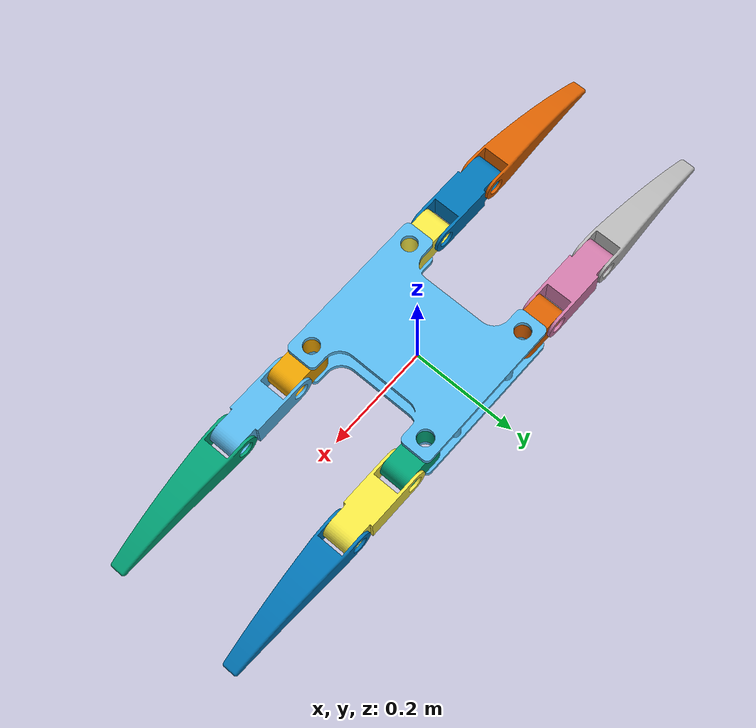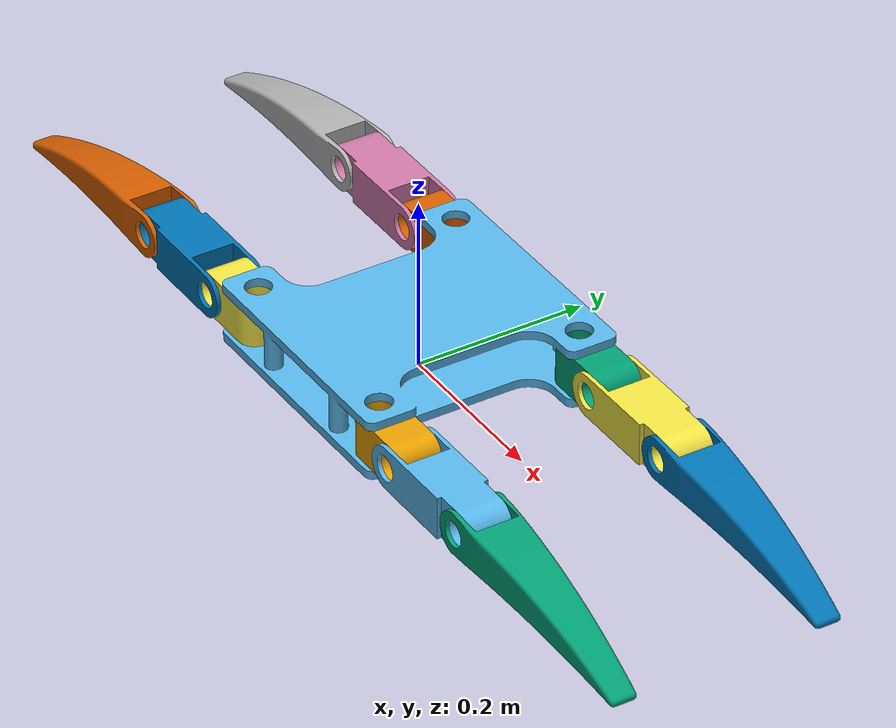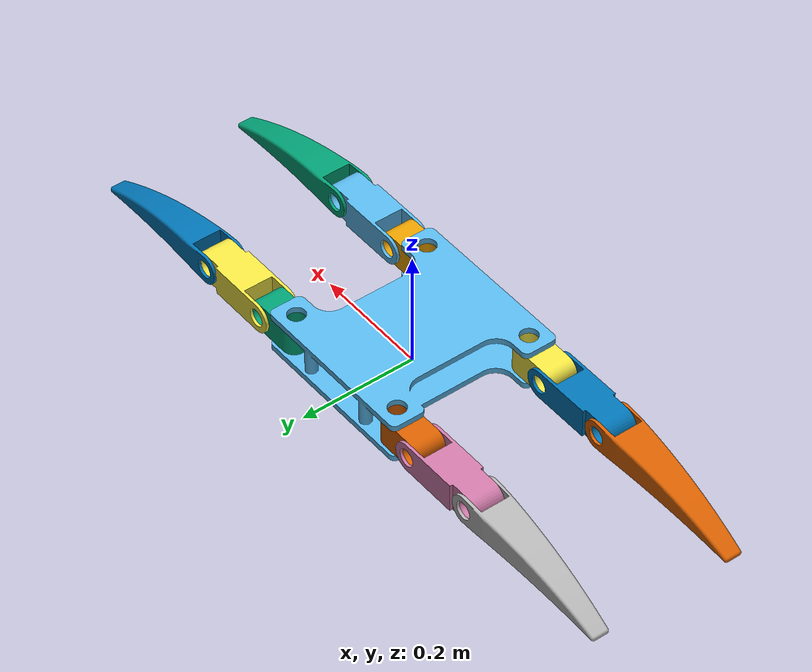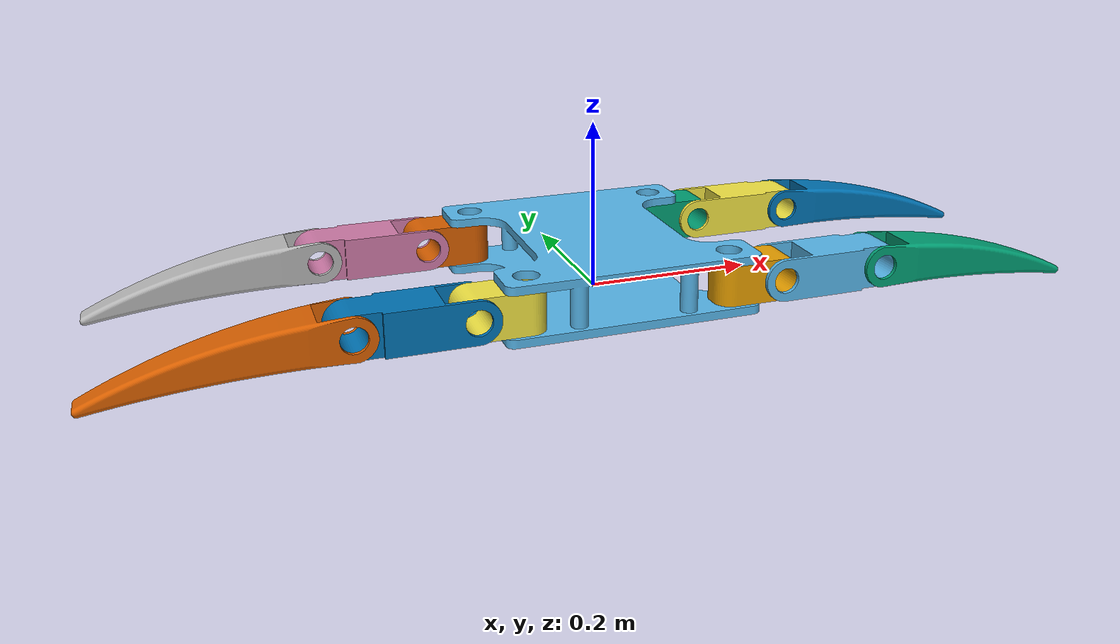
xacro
<?xml version="1.0"?>
<robot name="spider" xmlns:xacro="http://www.ros.org/wiki/xacro">

  <xacro:include filename="$(find quadruped_robots_description)/urdf/spider/base/base.urdf.xacro"/>
  <xacro:include filename="$(find quadruped_robots_description)/urdf/spider/legs/leg.urdf.xacro"/>

  <!-- =============== Links & Joints =============== -->

  <!-- Base -->
  <link name="base_footprint"/>
  <xacro:base parent="base_footprint">
    <origin xyz="0 0 0"/>
  </xacro:base>

  <!-- Legs -->
  <!-- Front right leg -->
  <xacro:leg prefix="fr" parent="base_link">
    <origin rpy="0 0 0" xyz="0.12 0.12 0.01"/>
  </xacro:leg>
  <!-- Front left leg -->
  <xacro:leg prefix="fl" parent="base_link">
    <origin rpy="0 0 ${M_PI}" xyz="-0.12 0.12 0.01"/>
  </xacro:leg>
  <!-- Rear right leg -->
  <xacro:leg prefix="rr" parent="base_link">
    <origin rpy="0 0 0" xyz="0.12 -0.12 0.01"/>
  </xacro:leg>
  <!-- Rear left leg -->
  <xacro:leg prefix="rl" parent="base_link">
    <origin rpy="0 0 ${M_PI}" xyz="-0.12 -0.12 0.01"/>
  </xacro:leg>
</robot>

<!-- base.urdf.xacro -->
<robot xmlns:xacro="http://www.ros.org/wiki/xacro">

  <xacro:include filename="$(find quadruped_robots_description)/urdf/spider/base/base.gazebo.xacro"/>

  <xacro:macro name="base" params="parent *joint_origin">
    <joint name="base_link_joint" type="fixed">>
      <insert_block name="joint_origin"/>
      <parent link="${parent}"/>
      <child link="base_link"/>
    </joint>

    <link name="base_link">
      <visual>
        <geometry>
          <mesh filename="package://quadruped_robots_description/meshes/spider/base.STL"/>
        </geometry>
      </visual>
      <collision>
        <geometry>
          <mesh filename="package://quadruped_robots_description/meshes/spider/base.STL"/>
        </geometry>
      </collision>
      <inertial>
        <mass value="1.38630"/>
        <inertia ixx="0.01563185703" ixy="0" ixz="0" iyy="0.00958260405" iyz="0" izz="0.01938754188"/>
      </inertial>
    </link>
  </xacro:macro>

</robot>

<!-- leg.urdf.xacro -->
<robot xmlns:xacro="http://www.ros.org/wiki/xacro">

  <xacro:include filename="$(find quadruped_robots_description)/urdf/spider/legs/leg1.urdf.xacro"/>
  <xacro:include filename="$(find quadruped_robots_description)/urdf/spider/legs/leg2.urdf.xacro"/>
  <xacro:include filename="$(find quadruped_robots_description)/urdf/spider/legs/leg3.urdf.xacro"/>

  <xacro:macro name="leg" params="prefix parent *joint_origin">
    <xacro:leg1 prefix="${prefix}" parent="${parent}">
      <insert_block name="joint_origin"/>
    </xacro:leg1>
    <xacro:leg2 prefix="${prefix}" parent="${prefix}_leg1_link">
      <origin rpy="0 0 0" xyz="0.06 -0.03 0.025"/>
    </xacro:leg2>
    <xacro:leg3 prefix="${prefix}" parent="${prefix}_leg2_link">
      <origin rpy="0 0 0" xyz="0.13 0 0"/>
    </xacro:leg3>
  </xacro:macro>

</robot>

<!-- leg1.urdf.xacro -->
<robot xmlns:xacro="http://www.ros.org/wiki/xacro">

  <xacro:include filename="$(find quadruped_robots_description)/urdf/servo_motors/servo_motors.xacro"/>

  <xacro:macro name="leg1" params="prefix parent *joint_origin">
    <joint name="${prefix}_leg1_joint" type="revolute">
      <insert_block name="joint_origin"/>
      <axis xyz="0 0 1"/>
      <KRS3302ICS_limit/>
      <parent link="${parent}"/>
      <child link="${prefix}_leg1_link"/>
    </joint>

    <link name="${prefix}_leg1_link">
      <visual>
        <geometry>
          <mesh filename="package://quadruped_robots_description/meshes/spider/leg1.STL"/>
        </geometry>
      </visual>
      <collision>
        <geometry>
          <mesh filename="package://quadruped_robots_description/meshes/spider/leg1.STL"/>
        </geometry>
      </collision>
      <inertial>
        <mass value="0.16215"/>
        <inertia ixx="0.00017574959" ixy="0" ixz="0.00012160951" iyy="0.00038938203" iyz="0" izz="0.00028804077"/>
      </inertial>
    </link>
  </xacro:macro>

</robot>

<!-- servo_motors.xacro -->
<robot xmlns:xacro="http://www.ros.org/wiki/xacro">

  <xacro:include filename="$(find quadruped_robots_description)/urdf/common.xacro"/>

  <xacro:macro name="KRS3302ICS_limit" params="lower_limit:=${-(3*M_PI)/4} upper_limit:=${(3*M_PI)/4}">
    <limit lower="${lower_limit}" upper="${upper_limit}" effort="0.067" velocity="${(M_PI/3)/0.16}"/>
  </xacro:macro>

</robot>

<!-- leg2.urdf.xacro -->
<robot xmlns:xacro="http://www.ros.org/wiki/xacro">

  <xacro:include filename="$(find quadruped_robots_description)/urdf/servo_motors/servo_motors.xacro"/>

  <xacro:macro name="leg2" params="prefix parent *joint_origin">
    <joint name="${prefix}_leg2_joint" type="revolute">
      <insert_block name="joint_origin"/>
      <axis xyz="0 1 0"/>
      <KRS3302ICS_limit/>
      <parent link="${parent}"/>
      <child link="${prefix}_leg2_link"/>
    </joint>

    <link name="${prefix}_leg2_link">
      <visual>
        <geometry>
          <mesh filename="package://quadruped_robots_description/meshes/spider/leg2.STL"/>
        </geometry>
      </visual>
      <collision>
        <geometry>
          <mesh filename="package://quadruped_robots_description/meshes/spider/leg2.STL"/>
        </geometry>
      </collision>
      <inertial>
        <mass value="0.30399"/>
        <inertia ixx="0.00043265194" ixy="0.00072891592" ixz="0" iyy="0.00240300132" iyz="0" izz="0.00270222511"/>
      </inertial>
    </link>
  </xacro:macro>

</robot>

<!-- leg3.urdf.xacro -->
<robot xmlns:xacro="http://www.ros.org/wiki/xacro">

  <xacro:include filename="$(find quadruped_robots_description)/urdf/servo_motors/servo_motors.xacro"/>

  <xacro:macro name="leg3" params="prefix parent *joint_origin">
    <joint name="${prefix}_leg3_joint" type="revolute">
      <insert_block name="joint_origin"/>
      <axis xyz="0 1 0"/>
      <KRS3302ICS_limit/>
      <parent link="${parent}"/>
      <child link="${prefix}_leg3_link"/>
    </joint>

    <link name="${prefix}_leg3_link">
      <visual>
        <origin rpy="${M_PI} 0 0" xyz="0 0.06 0"/>
        <geometry>
          <mesh filename="package://quadruped_robots_description/meshes/spider/leg3.STL"/>
        </geometry>
      </visual>
      <collision>
        <origin rpy="${M_PI} 0 0" xyz="0 0.06 0"/>
        <geometry>
          <mesh filename="package://quadruped_robots_description/meshes/spider/leg3.STL"/>
        </geometry>
      </collision>
      <inertial>
        <origin rpy="${M_PI} 0 0" xyz="0 0.06 0"/>
        <mass value="0.39164"/>
        <inertia ixx="0.00057788276" ixy="0.00133144744" ixz="0.00069625346" iyy="0.00667919118" iyz="0.00012359883" izz="0.00699240886"/>
      </inertial>
    </link>
  </xacro:macro>

</robot>
